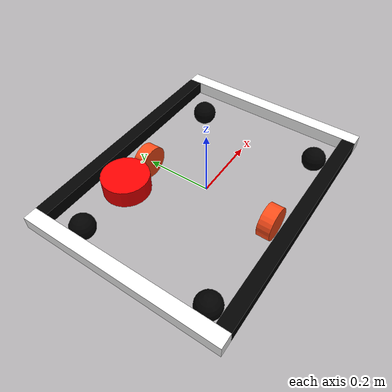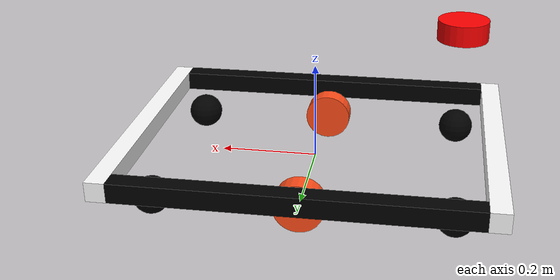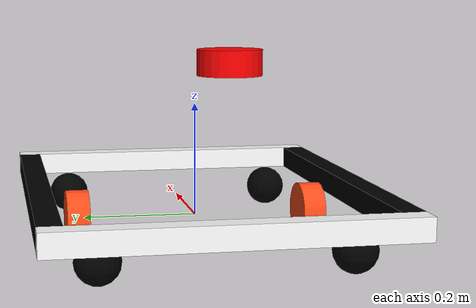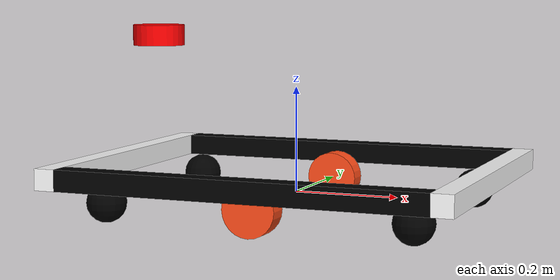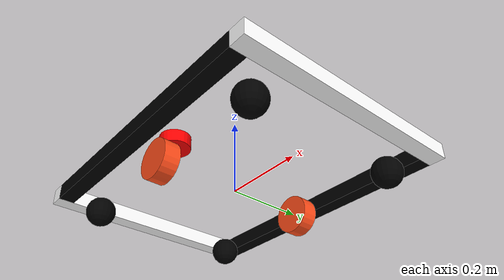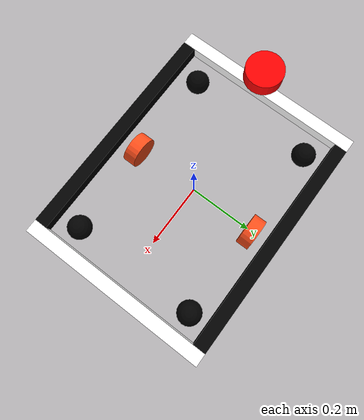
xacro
<?xml version="1.0"?>
<robot xmlns:xacro="http://www.ros.org/wiki/xacro"  name="robot">

    <xacro:include filename="robot_base.xacro"/>

<!-- CHOSE WHICH CONTROL METHOD YOU WANNA USE -->

    <xacro:include filename="ros2_control.xacro"/>

<!-- COMPONENTS XACRO -->

    <xacro:include filename="lidar.xacro"/>

</robot>

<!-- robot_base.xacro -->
<robot xmlns:xacro="http://www.ros.org/wiki/xacro" >

    <xacro:include filename="inertial_macros.xacro" />

    <material name="white">
        <color rgba="1 1 1 1" />
    </material>

    <material name="orange">
        <color rgba= "1 0.3 0.1 1"/>
    </material>

    <material name="blue">
        <color rgba="0.2 0.2 1 1"/>
    </material>

    <material name="black">
        <color rgba="0 0 0 1"/>
    </material>

    <material name="red">
        <color rgba="1 0 0 1"/>
    </material>

    <link name="base_link">

    </link>

    <joint name="base_footprint_joint" type="fixed">
        <parent link="base_link"/>
        <child link="base_footprint"/>
        <origin xyz="0 0 0" rpy="0 0 0"/>
    </joint>

    <link name="base_footprint">
    </link>

    <joint name="chassis_joint" type="fixed">
        <parent link="base_link"/>
        <child link="chassis"/>
        <origin xyz="-0.39 0 0.0435"/>
    </joint>

    <link name="chassis">
        <visual>
            <origin xyz="0.02 0 0"/>
            <geometry>
                <box size="0.04 0.6 0.04"/>
            </geometry>
            <material name="white"/>
        </visual>
        <visual>
            <origin xyz="0.76 0 0"/>
            <geometry>
                <box size="0.04 0.6 0.04"/>
            </geometry>
            <material name="white"/>
        </visual>
        <visual>
            <origin xyz="0.39 0.28 0"/>
            <geometry>
                <box size="0.7 0.04 0.04"/>
            </geometry>
            <material name="black"/>
        </visual>
        <visual>
            <origin xyz="0.39 -0.28 0"/>
            <geometry>
                <box size="0.7 0.04 0.04"/>
            </geometry>
            <material name="black"/>
        </visual>
        <collision>
            <origin xyz="0.39 0 0"/>
            <geometry>
                <box size="0.78 0.6 0.04"/>
            </geometry>
        </collision>
        <xacro:inertial_hollow_frame mass="3.224" x="0.78" y="0.6" z="0.04">
            <origin xyz="0.39 0 0" rpy="0 0 0" />
        </xacro:inertial_hollow_frame>
    </link>

    <gazebo reference="chassis">
        <material>Gazebo/White</material>
    </gazebo>

    <joint name="right_wheel_joint" type="continuous">
        <parent link="base_link"/>
        <child link="right_wheel"/>
        <origin xyz="0 -0.2125 0" rpy="${pi/2} 0 0"/>
        <axis xyz="0 0 -1"/>
    </joint>

    <link name="right_wheel">
        <visual>
            <geometry>
                <cylinder radius="0.05" length="0.04"/>
            </geometry>
            <material name="orange"/>
        </visual>
        <collision>
            <geometry>
                <sphere radius="0.05"/>
            </geometry>
        </collision>
        <xacro:inertial_cylinder mass="0.1" length="0.04" radius="0.05">
            <origin xyz="0 0 0" rpy="0 0 0"/>
        </xacro:inertial_cylinder>
    </link>

    <gazebo reference="right_wheel">
        <material>Gazebo/Orange</material>
    </gazebo>

    <joint name="left_wheel_joint" type="continuous">
        <parent link="base_link"/>
        <child link="left_wheel"/>
        <origin xyz="0 0.2125 0" rpy="-${pi/2} 0 0"/>
        <axis xyz="0 0 1"/>
    </joint>

    <link name="left_wheel">
        <visual>
            <geometry>
                <cylinder radius="0.05" length="0.04"/>
            </geometry>
            <material name="orange"/>
        </visual>
        <collision>
            <geometry>
                <sphere radius="0.05"/>
            </geometry>
        </collision>
        <xacro:inertial_cylinder mass="0.1" length="0.04" radius="0.05">
            <origin xyz="0 0 0" rpy="0 0 0"/>
        </xacro:inertial_cylinder>
    </link>

    <gazebo reference="left_wheel">
        <material>Gazebo/Orange</material>
    </gazebo>

    <joint name="caster_wheel_1_joint" type="fixed">
        <parent link="chassis"/>
        <child link="caster_wheel_1"/>
        <origin xyz="0.09475 0.20525 -0.05"/>
    </joint>

    <link name="caster_wheel_1">
        <visual>
            <geometry>
                <sphere radius="0.03775"/>
            </geometry>
            <material name="black"/>
        </visual>
        <collision>
            <geometry>
                <sphere radius="0.03775"/>
            </geometry>
        </collision>
        <xacro:inertial_sphere mass="0.1" radius="0.03775">
            <origin xyz="0 0 0" rpy="0 0 0"/>
        </xacro:inertial_sphere>
    </link>

    <gazebo reference="caster_wheel_1">
        <material>Gazebo/Blue</material>
        <mu1 value="0.001"/>
        <mu2 value="0.001"/>
    </gazebo>

    <joint name="caster_wheel_2_joint" type="fixed">
        <parent link="chassis"/>
        <child link="caster_wheel_2"/>
        <origin xyz="0.09475 -0.20525 -0.05"/>
    </joint>

    <link name="caster_wheel_2">
        <visual>
            <geometry>
                <sphere radius="0.03775"/>
            </geometry>
            <material name="black"/>
        </visual>
        <collision>
            <geometry>
                <sphere radius="0.03775"/>
            </geometry>
        </collision>
        <xacro:inertial_sphere mass="0.1" radius="0.03775">
            <origin xyz="0 0 0" rpy="0 0 0"/>
        </xacro:inertial_sphere>
    </link>

    <gazebo reference="caster_wheel_2">
        <material>Gazebo/Blue</material>
        <mu1 value="0.001"/>
        <mu2 value="0.001"/>
    </gazebo>

    <joint name="caster_wheel_3_joint" type="fixed">
        <parent link="chassis"/>
        <child link="caster_wheel_3"/>
        <origin xyz="0.68525 0.20525 -0.05"/>
    </joint>

    <link name="caster_wheel_3">
        <visual>
            <geometry>
                <sphere radius="0.03775"/>
            </geometry>
            <material name="black"/>
        </visual>
        <collision>
            <geometry>
                <sphere radius="0.03775"/>
            </geometry>
        </collision>
        <xacro:inertial_sphere mass="0.1" radius="0.03775">
            <origin xyz="0 0 0" rpy="0 0 0"/>
        </xacro:inertial_sphere>
    </link>

    <gazebo reference="caster_wheel_3">
        <material>Gazebo/Blue</material>
        <mu1 value="0.001"/>
        <mu2 value="0.001"/>
    </gazebo>

    <joint name="caster_wheel_4_joint" type="fixed">
        <parent link="chassis"/>
        <child link="caster_wheel_4"/>
        <origin xyz="0.68525 -0.20525 -0.05"/>
    </joint>

    <link name="caster_wheel_4">
        <visual>
            <geometry>
                <sphere radius="0.03775"/>
            </geometry>
            <material name="black"/>
        </visual>
        <collision>
            <geometry>
                <sphere radius="0.03775"/>
            </geometry>
        </collision>
        <xacro:inertial_sphere mass="0.1" radius="0.03775">
            <origin xyz="0 0 0" rpy="0 0 0"/>
        </xacro:inertial_sphere>
    </link>

    <gazebo reference="caster_wheel_4">
        <material>Gazebo/Blue</material>
        <mu1 value="0.001"/>
        <mu2 value="0.001"/>
    </gazebo>

</robot>

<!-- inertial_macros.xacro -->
<robot xmlns:xacro="http://www.ros.org/wiki/xacro" >

    <!-- Specify some standard inertial calculations https://en.wikipedia.org/wiki/List_of_moments_of_inertia -->
    <!-- These make use of xacro's mathematical functionality -->

    <xacro:macro name="inertial_sphere" params="mass radius *origin">
        <inertial>
            <xacro:insert_block name="origin"/>
            <mass value="${mass}" />
            <inertia ixx="${(2/5) * mass * (radius*radius)}" ixy="0.0" ixz="0.0"
                    iyy="${(2/5) * mass * (radius*radius)}" iyz="0.0"
                    izz="${(2/5) * mass * (radius*radius)}" />
        </inertial>
    </xacro:macro>

    <xacro:macro name="inertial_box" params="mass x y z *origin">
        <inertial>
            <xacro:insert_block name="origin"/>
            <mass value="${mass}" />
            <inertia ixx="${(1/12) * mass * (y*y+z*z)}" ixy="0.0" ixz="0.0"
                    iyy="${(1/12) * mass * (x*x+z*z)}" iyz="0.0"
                    izz="${(1/12) * mass * (x*x+y*y)}" />
        </inertial>
    </xacro:macro>

    <xacro:macro name="inertial_hollow_frame" params="mass x y z *origin">
    <inertial>
        <xacro:insert_block name="origin"/>
        <mass value="${mass}" />
        <xacro:property name="k" value="0.04" />
        <xacro:property name="ixx" value="${(1/12) * mass * ((y*y+z*z) - ((y-k)*(y-k)+z*z))}" />
        <xacro:property name="iyy" value="${(1/12) * mass * ((x*x+z*z) - ((x-k)*(x-k)+z*z))}" />
        <xacro:property name="izz" value="${(1/12) * mass * (x*x+y*y)}" />

        <!-- Set inertia components -->
        <inertia ixx="${ixx}" ixy="0.0" ixz="0.0"
                iyy="${iyy}" iyz="0.0"
                izz="${izz}" />
    </inertial>
</xacro:macro>

    <xacro:macro name="inertial_cylinder" params="mass length radius *origin">
        <inertial>
            <xacro:insert_block name="origin"/>
            <mass value="${mass}" />
            <inertia ixx="${(1/12) * mass * (3*radius*radius + length*length)}" ixy="0.0" ixz="0.0"
                    iyy="${(1/12) * mass * (3*radius*radius + length*length)}" iyz="0.0"
                    izz="${(1/2) * mass * (radius*radius)}" />
        </inertial>
    </xacro:macro>

</robot>

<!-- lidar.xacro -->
<robot xmlns:xacro="http://www.ros.org/wiki/xacro" >

    <joint name="laser_joint" type="fixed">
        <parent link="chassis"/>
        <child link="laser_frame"/>
        <origin xyz ="0.1 0 0.25" rpy = "0 0 0"/> <!-- de aflat valorile exacte -->
    </joint>

    <link name="laser_frame">
        <visual>
            <geometry>
                <cylinder radius="0.05" length="0.04"/>
            </geometry>
            <material name="red"/>
        </visual>
        <collision>
            <geometry>
                <cylinder radius="0.05" length="0.04"/>
            </geometry>
        </collision>
        <xacro:inertial_cylinder mass="0.1" length="0.04" radius="0.05">
            <origin xyz="0 0 0" rpy="0 0 0"/>
        </xacro:inertial_cylinder>
    </link>

    <gazebo reference="laser_frame">
        <material>Gazebo/Red</material>

        <sensor name="laser" type="ray">
            <pose> 0 0 0 0 0 0 </pose>
            <visualize>false</visualize>
            <update_rate>10</update_rate>
            <ray>
                <scan>
                    <horizontal>
                        <samples>360</samples>
                        <min_angle>-3.14</min_angle>
                        <max_angle>3.14</max_angle>
                    </horizontal>
                </scan>
                <range>
                    <min>0.3</min>
                    <max>12</max>
                </range>
            </ray>
            <plugin name="laser_controller" filename="libgazebo_ros_ray_sensor.so">
                <ros>
                    <argument>~/out:=scan</argument>
                </ros>
                <output_type>sensor_msgs/LaserScan</output_type>
                <frame_name>laser_frame</frame_name>
            </plugin>
        </sensor>
    </gazebo>

</robot>
